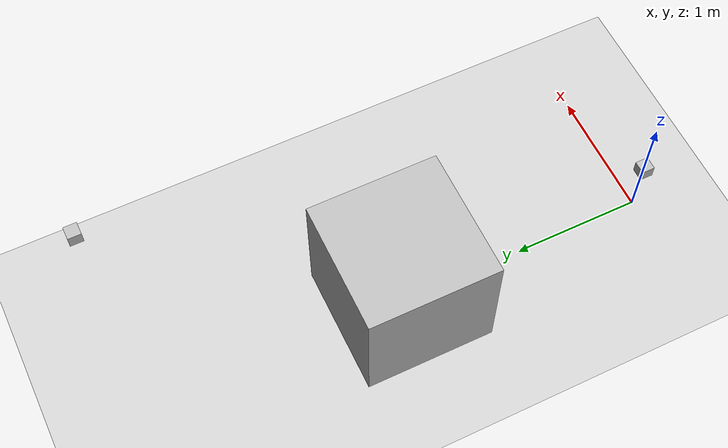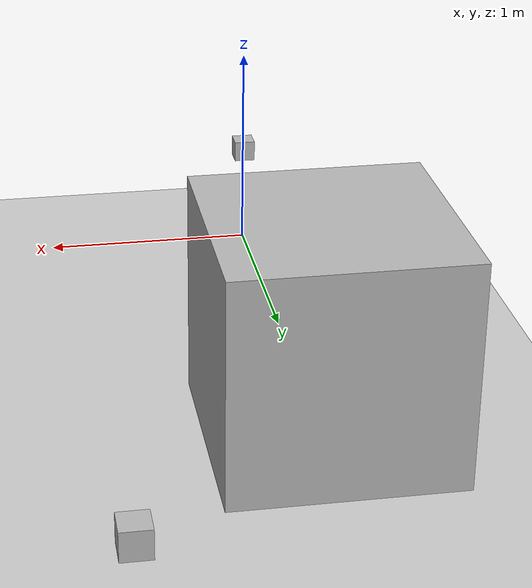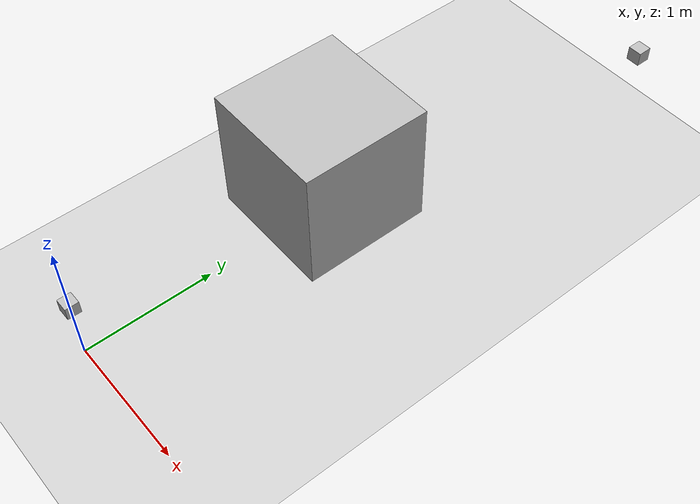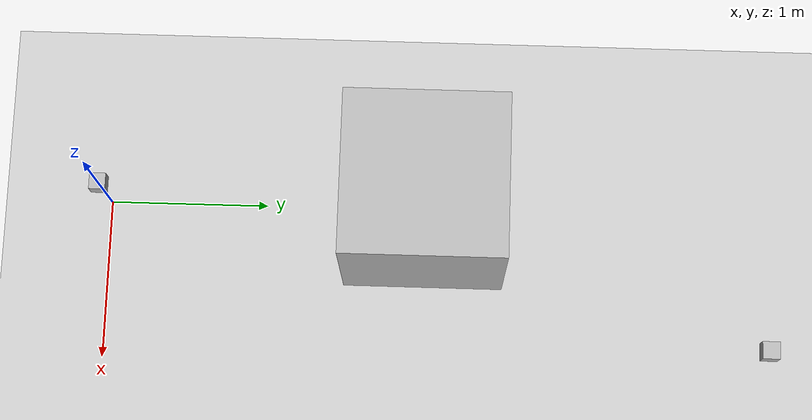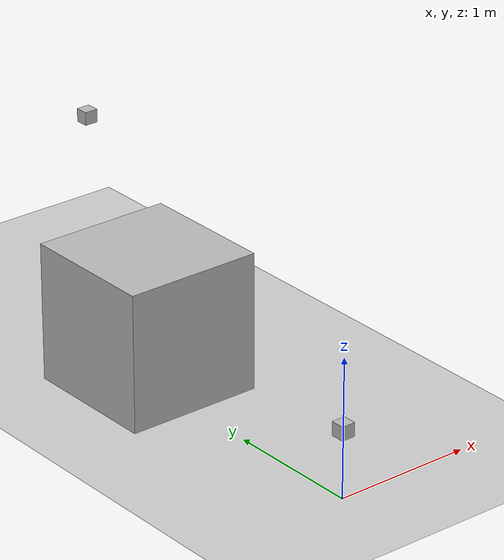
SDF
<?xml version="1.0" ?>
<sdf version="1.5">
  <world name="default">
    <include>
      <uri>model://sun</uri>
    </include>
    <include>
      <uri>model://ground_plane</uri>
    </include>
    <model name="box">
      <pose>0 2 0.5 0 0 0</pose>
      <link name="link">
        <collision name="collision">
          <geometry>
            <box>
              <size>1 1 1</size>
            </box>
          </geometry>
        </collision>
        <visual name="visual">
          <geometry>
            <box>
              <size>1 1 1</size>
            </box>
          </geometry>
        </visual>
      </link>
    </model>
    <model name="sonar_model_cone">
      <static>true</static>
      <pose>0 0 0.5 1.5707 0 0</pose>
      <link name="link">
        <collision name="collision">
          <geometry>
            <box>
              <size>0.1 0.1 0.1</size>
            </box>
          </geometry>
        </collision>
        <visual name="visual">
          <geometry>
            <box>
              <size>0.1 0.1 0.1</size>
            </box>
          </geometry>
        </visual>
        <sensor name="sonar" type="sonar">
          <sonar>
            <min>0</min>
            <max>2.00</max>
            <geometry>cone</geometry>
            <radius>0.3</radius>
          </sonar>
          <always_on>1</always_on>
          <update_rate>30</update_rate>
          <visualize>true</visualize>
        </sensor>
      </link>
    </model>
    <model name="sonar_model_sphere">
      <static>true</static>
      <pose>1 4 1 -1.57 0 0</pose>
      <link name="link">
        <collision name="collision">
          <geometry>
            <box>
              <size>0.1 0.1 0.1</size>
            </box>
          </geometry>
        </collision>
        <visual name="visual">
          <geometry>
            <box>
              <size>0.1 0.1 0.1</size>
            </box>
          </geometry>
        </visual>
        <sensor name="sonar" type="sonar">
          <sonar>
            <min>0</min>
            <max>2.00</max>
            <geometry>sphere</geometry>
          </sonar>
          <always_on>1</always_on>
          <update_rate>30</update_rate>
          <visualize>true</visualize>
        </sensor>
      </link>
    </model>
  </world>
</sdf>
